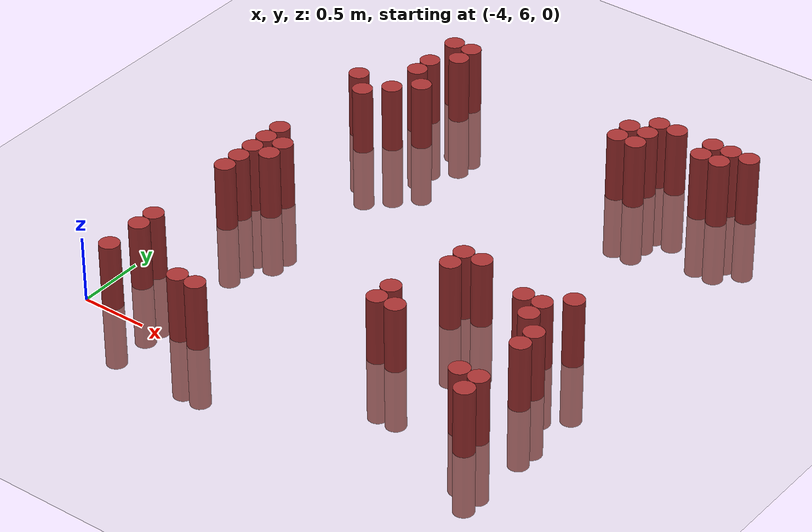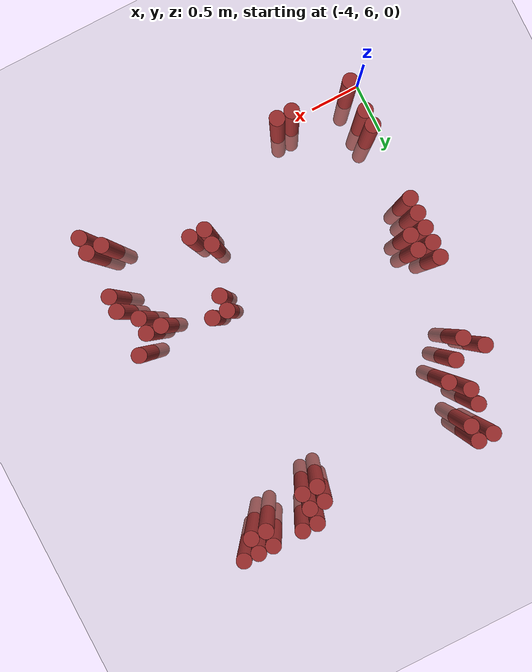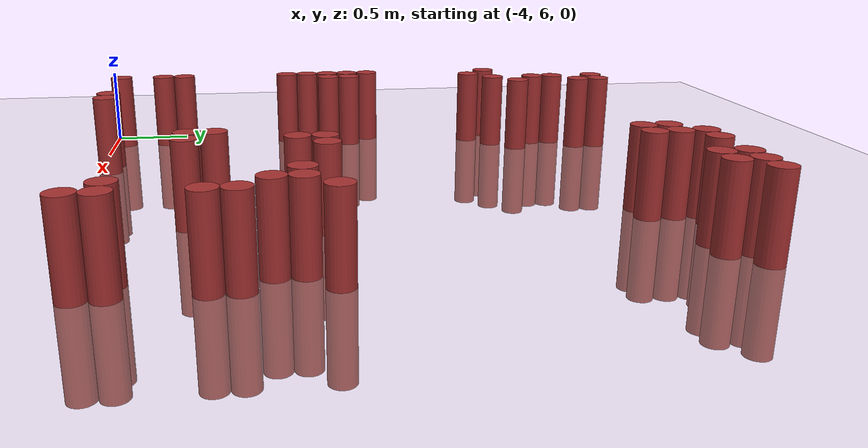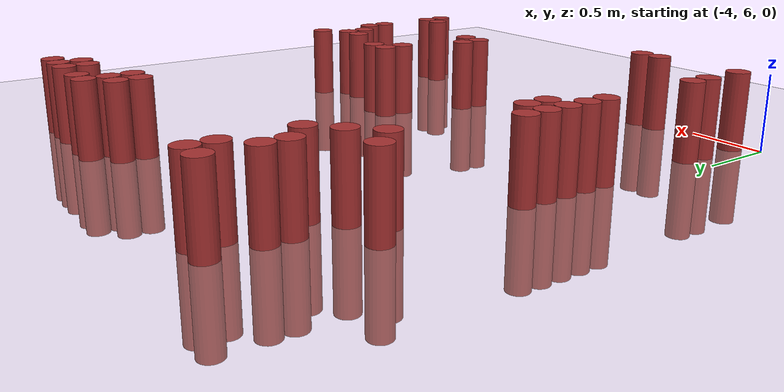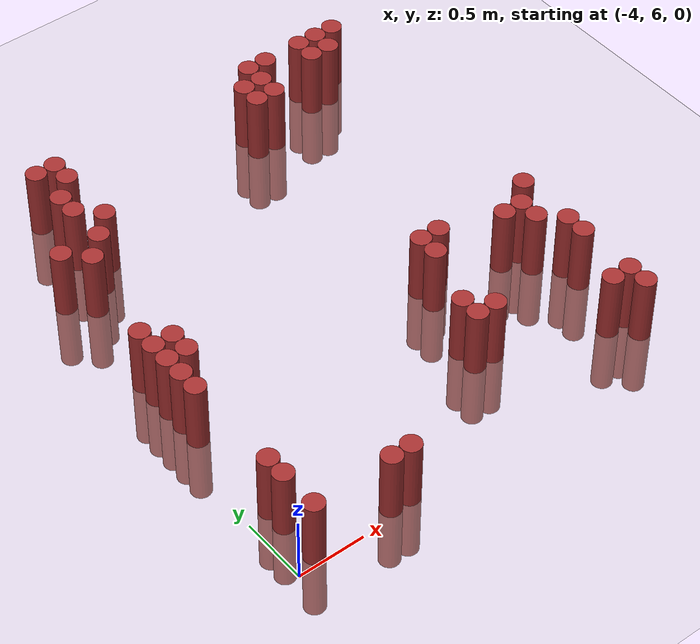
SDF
<sdf version="1.6">
 <world name="default">
  <model name="ground_plane">
   <static>1</static>
   <link name="link">
    <collision name="collision">
     <geometry><plane><normal>0 0 1</normal><size>100 100</size></plane></geometry>
     <surface><friction><ode><mu>100</mu><mu2>50</mu2></ode></friction></surface>
    </collision>
    <visual name="visual">
     <cast_shadows>0</cast_shadows>
     <geometry><plane><normal>0 0 1</normal><size>100 100</size></plane></geometry>
     <material>
      <script><uri>file://media/materials/scripts/gazebo.material</uri><name>Gazebo/Grey</name></script>
     </material>
    </visual>
   </link>
  </model>
  <model name="unit_cylinder_157">
   <static>1</static>
   <pose>-3.825000 6.075000 0.000000 0.000000 0.000000 0.000000</pose>
   <link name="link">
    <inertial>
     <mass>1</mass>
     <inertia><ixx>0.145833</ixx><ixy>0</ixy><ixz>0</ixz><iyy>0.145833</iyy><iyz>0</iyz><izz>0.125</izz></inertia>
    </inertial>
    <collision name="collision">
     <geometry><cylinder><radius>0.075000</radius><length>1</length></cylinder></geometry>
    </collision>
    <visual name="visual">
     <geometry><cylinder><radius>0.075000</radius><length>1</length></cylinder></geometry>
     <material>
      <ambient>0.648000 0.192000 0.192000 1</ambient>
      <diffuse>0.648000 0.192000 0.192000 1</diffuse>
     </material>
     <material>
      <script><name>Gazebo/Grey</name><uri>file://media/materials/scripts/gazebo.material</uri></script>
     </material>
    </visual>
   </link>
  </model>
  <model name="unit_cylinder_158">
   <static>1</static>
   <pose>-3.825000 6.375000 0.000000 0.000000 0.000000 0.000000</pose>
   <link name="link">
    <inertial>
     <mass>1</mass>
     <inertia><ixx>0.145833</ixx><ixy>0</ixy><ixz>0</ixz><iyy>0.145833</iyy><iyz>0</iyz><izz>0.125</izz></inertia>
    </inertial>
    <collision name="collision">
     <geometry><cylinder><radius>0.075000</radius><length>1</length></cylinder></geometry>
    </collision>
    <visual name="visual">
     <geometry><cylinder><radius>0.075000</radius><length>1</length></cylinder></geometry>
     <material>
      <ambient>0.648000 0.192000 0.192000 1</ambient>
      <diffuse>0.648000 0.192000 0.192000 1</diffuse>
     </material>
     <material>
      <script><name>Gazebo/Grey</name><uri>file://media/materials/scripts/gazebo.material</uri></script>
     </material>
    </visual>
   </link>
  </model>
  <model name="unit_cylinder_159">
   <static>1</static>
   <pose>-3.825000 6.525000 0.000000 0.000000 0.000000 0.000000</pose>
   <link name="link">
    <inertial>
     <mass>1</mass>
     <inertia><ixx>0.145833</ixx><ixy>0</ixy><ixz>0</ixz><iyy>0.145833</iyy><iyz>0</iyz><izz>0.125</izz></inertia>
    </inertial>
    <collision name="collision">
     <geometry><cylinder><radius>0.075000</radius><length>1</length></cylinder></geometry>
    </collision>
    <visual name="visual">
     <geometry><cylinder><radius>0.075000</radius><length>1</length></cylinder></geometry>
     <material>
      <ambient>0.648000 0.192000 0.192000 1</ambient>
      <diffuse>0.648000 0.192000 0.192000 1</diffuse>
     </material>
     <material>
      <script><name>Gazebo/Grey</name><uri>file://media/materials/scripts/gazebo.material</uri></script>
     </material>
    </visual>
   </link>
  </model>
  <model name="unit_cylinder_160">
   <static>1</static>
   <pose>-3.825000 7.275000 0.000000 0.000000 0.000000 0.000000</pose>
   <link name="link">
    <inertial>
     <mass>1</mass>
     <inertia><ixx>0.145833</ixx><ixy>0</ixy><ixz>0</ixz><iyy>0.145833</iyy><iyz>0</iyz><izz>0.125</izz></inertia>
    </inertial>
    <collision name="collision">
     <geometry><cylinder><radius>0.075000</radius><length>1</length></cylinder></geometry>
    </collision>
    <visual name="visual">
     <geometry><cylinder><radius>0.075000</radius><length>1</length></cylinder></geometry>
     <material>
      <ambient>0.648000 0.192000 0.192000 1</ambient>
      <diffuse>0.648000 0.192000 0.192000 1</diffuse>
     </material>
     <material>
      <script><name>Gazebo/Grey</name><uri>file://media/materials/scripts/gazebo.material</uri></script>
     </material>
    </visual>
   </link>
  </model>
  <model name="unit_cylinder_161">
   <static>1</static>
   <pose>-3.825000 7.425000 0.000000 0.000000 0.000000 0.000000</pose>
   <link name="link">
    <inertial>
     <mass>1</mass>
     <inertia><ixx>0.145833</ixx><ixy>0</ixy><ixz>0</ixz><iyy>0.145833</iyy><iyz>0</iyz><izz>0.125</izz></inertia>
    </inertial>
    <collision name="collision">
     <geometry><cylinder><radius>0.075000</radius><length>1</length></cylinder></geometry>
    </collision>
    <visual name="visual">
     <geometry><cylinder><radius>0.075000</radius><length>1</length></cylinder></geometry>
     <material>
      <ambient>0.648000 0.192000 0.192000 1</ambient>
      <diffuse>0.648000 0.192000 0.192000 1</diffuse>
     </material>
     <material>
      <script><name>Gazebo/Grey</name><uri>file://media/materials/scripts/gazebo.material</uri></script>
     </material>
    </visual>
   </link>
  </model>
  <model name="unit_cylinder_162">
   <static>1</static>
   <pose>-3.825000 7.575000 0.000000 0.000000 0.000000 0.000000</pose>
   <link name="link">
    <inertial>
     <mass>1</mass>
     <inertia><ixx>0.145833</ixx><ixy>0</ixy><ixz>0</ixz><iyy>0.145833</iyy><iyz>0</iyz><izz>0.125</izz></inertia>
    </inertial>
    <collision name="collision">
     <geometry><cylinder><radius>0.075000</radius><length>1</length></cylinder></geometry>
    </collision>
    <visual name="visual">
     <geometry><cylinder><radius>0.075000</radius><length>1</length></cylinder></geometry>
     <material>
      <ambient>0.648000 0.192000 0.192000 1</ambient>
      <diffuse>0.648000 0.192000 0.192000 1</diffuse>
     </material>
     <material>
      <script><name>Gazebo/Grey</name><uri>file://media/materials/scripts/gazebo.material</uri></script>
     </material>
    </visual>
   </link>
  </model>
  <model name="unit_cylinder_163">
   <static>1</static>
   <pose>-3.825000 7.725000 0.000000 0.000000 0.000000 0.000000</pose>
   <link name="link">
    <inertial>
     <mass>1</mass>
     <inertia><ixx>0.145833</ixx><ixy>0</ixy><ixz>0</ixz><iyy>0.145833</iyy><iyz>0</iyz><izz>0.125</izz></inertia>
    </inertial>
    <collision name="collision">
     <geometry><cylinder><radius>0.075000</radius><length>1</length></cylinder></geometry>
    </collision>
    <visual name="visual">
     <geometry><cylinder><radius>0.075000</radius><length>1</length></cylinder></geometry>
     <material>
      <ambient>0.648000 0.192000 0.192000 1</ambient>
      <diffuse>0.648000 0.192000 0.192000 1</diffuse>
     </material>
     <material>
      <script><name>Gazebo/Grey</name><uri>file://media/materials/scripts/gazebo.material</uri></script>
     </material>
    </visual>
   </link>
  </model>
  <model name="unit_cylinder_164">
   <static>1</static>
   <pose>-3.825000 7.875000 0.000000 0.000000 0.000000 0.000000</pose>
   <link name="link">
    <inertial>
     <mass>1</mass>
     <inertia><ixx>0.145833</ixx><ixy>0</ixy><ixz>0</ixz><iyy>0.145833</iyy><iyz>0</iyz><izz>0.125</izz></inertia>
    </inertial>
    <collision name="collision">
     <geometry><cylinder><radius>0.075000</radius><length>1</length></cylinder></geometry>
    </collision>
    <visual name="visual">
     <geometry><cylinder><radius>0.075000</radius><length>1</length></cylinder></geometry>
     <material>
      <ambient>0.648000 0.192000 0.192000 1</ambient>
      <diffuse>0.648000 0.192000 0.192000 1</diffuse>
     </material>
     <material>
      <script><name>Gazebo/Grey</name><uri>file://media/materials/scripts/gazebo.material</uri></script>
     </material>
    </visual>
   </link>
  </model>
  <model name="unit_cylinder_165">
   <static>1</static>
   <pose>-3.825000 8.775000 0.000000 0.000000 0.000000 0.000000</pose>
   <link name="link">
    <inertial>
     <mass>1</mass>
     <inertia><ixx>0.145833</ixx><ixy>0</ixy><ixz>0</ixz><iyy>0.145833</iyy><iyz>0</iyz><izz>0.125</izz></inertia>
    </inertial>
    <collision name="collision">
     <geometry><cylinder><radius>0.075000</radius><length>1</length></cylinder></geometry>
    </collision>
    <visual name="visual">
     <geometry><cylinder><radius>0.075000</radius><length>1</length></cylinder></geometry>
     <material>
      <ambient>0.648000 0.192000 0.192000 1</ambient>
      <diffuse>0.648000 0.192000 0.192000 1</diffuse>
     </material>
     <material>
      <script><name>Gazebo/Grey</name><uri>file://media/materials/scripts/gazebo.material</uri></script>
     </material>
    </visual>
   </link>
  </model>
  <model name="unit_cylinder_170">
   <static>1</static>
   <pose>-3.675000 7.575000 0.000000 0.000000 0.000000 0.000000</pose>
   <link name="link">
    <inertial>
     <mass>1</mass>
     <inertia><ixx>0.145833</ixx><ixy>0</ixy><ixz>0</ixz><iyy>0.145833</iyy><iyz>0</iyz><izz>0.125</izz></inertia>
    </inertial>
    <collision name="collision">
     <geometry><cylinder><radius>0.075000</radius><length>1</length></cylinder></geometry>
    </collision>
    <visual name="visual">
     <geometry><cylinder><radius>0.075000</radius><length>1</length></cylinder></geometry>
     <material>
      <ambient>0.648000 0.192000 0.192000 1</ambient>
      <diffuse>0.648000 0.192000 0.192000 1</diffuse>
     </material>
     <material>
      <script><name>Gazebo/Grey</name><uri>file://media/materials/scripts/gazebo.material</uri></script>
     </material>
    </visual>
   </link>
  </model>
  <model name="unit_cylinder_171">
   <static>1</static>
   <pose>-3.675000 7.725000 0.000000 0.000000 0.000000 0.000000</pose>
   <link name="link">
    <inertial>
     <mass>1</mass>
     <inertia><ixx>0.145833</ixx><ixy>0</ixy><ixz>0</ixz><iyy>0.145833</iyy><iyz>0</iyz><izz>0.125</izz></inertia>
    </inertial>
    <collision name="collision">
     <geometry><cylinder><radius>0.075000</radius><length>1</length></cylinder></geometry>
    </collision>
    <visual name="visual">
     <geometry><cylinder><radius>0.075000</radius><length>1</length></cylinder></geometry>
     <material>
      <ambient>0.648000 0.192000 0.192000 1</ambient>
      <diffuse>0.648000 0.192000 0.192000 1</diffuse>
     </material>
     <material>
      <script><name>Gazebo/Grey</name><uri>file://media/materials/scripts/gazebo.material</uri></script>
     </material>
    </visual>
   </link>
  </model>
  <model name="unit_cylinder_172">
   <static>1</static>
   <pose>-3.675000 8.625000 0.000000 0.000000 0.000000 0.000000</pose>
   <link name="link">
    <inertial>
     <mass>1</mass>
     <inertia><ixx>0.145833</ixx><ixy>0</ixy><ixz>0</ixz><iyy>0.145833</iyy><iyz>0</iyz><izz>0.125</izz></inertia>
    </inertial>
    <collision name="collision">
     <geometry><cylinder><radius>0.075000</radius><length>1</length></cylinder></geometry>
    </collision>
    <visual name="visual">
     <geometry><cylinder><radius>0.075000</radius><length>1</length></cylinder></geometry>
     <material>
      <ambient>0.648000 0.192000 0.192000 1</ambient>
      <diffuse>0.648000 0.192000 0.192000 1</diffuse>
     </material>
     <material>
      <script><name>Gazebo/Grey</name><uri>file://media/materials/scripts/gazebo.material</uri></script>
     </material>
    </visual>
   </link>
  </model>
  <model name="unit_cylinder_177">
   <static>1</static>
   <pose>-3.525000 8.775000 0.000000 0.000000 0.000000 0.000000</pose>
   <link name="link">
    <inertial>
     <mass>1</mass>
     <inertia><ixx>0.145833</ixx><ixy>0</ixy><ixz>0</ixz><iyy>0.145833</iyy><iyz>0</iyz><izz>0.125</izz></inertia>
    </inertial>
    <collision name="collision">
     <geometry><cylinder><radius>0.075000</radius><length>1</length></cylinder></geometry>
    </collision>
    <visual name="visual">
     <geometry><cylinder><radius>0.075000</radius><length>1</length></cylinder></geometry>
     <material>
      <ambient>0.648000 0.192000 0.192000 1</ambient>
      <diffuse>0.648000 0.192000 0.192000 1</diffuse>
     </material>
     <material>
      <script><name>Gazebo/Grey</name><uri>file://media/materials/scripts/gazebo.material</uri></script>
     </material>
    </visual>
   </link>
  </model>
  <model name="unit_cylinder_178">
   <static>1</static>
   <pose>-3.525000 9.075000 0.000000 0.000000 0.000000 0.000000</pose>
   <link name="link">
    <inertial>
     <mass>1</mass>
     <inertia><ixx>0.145833</ixx><ixy>0</ixy><ixz>0</ixz><iyy>0.145833</iyy><iyz>0</iyz><izz>0.125</izz></inertia>
    </inertial>
    <collision name="collision">
     <geometry><cylinder><radius>0.075000</radius><length>1</length></cylinder></geometry>
    </collision>
    <visual name="visual">
     <geometry><cylinder><radius>0.075000</radius><length>1</length></cylinder></geometry>
     <material>
      <ambient>0.648000 0.192000 0.192000 1</ambient>
      <diffuse>0.648000 0.192000 0.192000 1</diffuse>
     </material>
     <material>
      <script><name>Gazebo/Grey</name><uri>file://media/materials/scripts/gazebo.material</uri></script>
     </material>
    </visual>
   </link>
  </model>
  <model name="unit_cylinder_179">
   <static>1</static>
   <pose>-3.525000 9.225000 0.000000 0.000000 0.000000 0.000000</pose>
   <link name="link">
    <inertial>
     <mass>1</mass>
     <inertia><ixx>0.145833</ixx><ixy>0</ixy><ixz>0</ixz><iyy>0.145833</iyy><iyz>0</iyz><izz>0.125</izz></inertia>
    </inertial>
    <collision name="collision">
     <geometry><cylinder><radius>0.075000</radius><length>1</length></cylinder></geometry>
    </collision>
    <visual name="visual">
     <geometry><cylinder><radius>0.075000</radius><length>1</length></cylinder></geometry>
     <material>
      <ambient>0.648000 0.192000 0.192000 1</ambient>
      <diffuse>0.648000 0.192000 0.192000 1</diffuse>
     </material>
     <material>
      <script><name>Gazebo/Grey</name><uri>file://media/materials/scripts/gazebo.material</uri></script>
     </material>
    </visual>
   </link>
  </model>
  <model name="unit_cylinder_180">
   <static>1</static>
   <pose>-3.525000 9.525000 0.000000 0.000000 0.000000 0.000000</pose>
   <link name="link">
    <inertial>
     <mass>1</mass>
     <inertia><ixx>0.145833</ixx><ixy>0</ixy><ixz>0</ixz><iyy>0.145833</iyy><iyz>0</iyz><izz>0.125</izz></inertia>
    </inertial>
    <collision name="collision">
     <geometry><cylinder><radius>0.075000</radius><length>1</length></cylinder></geometry>
    </collision>
    <visual name="visual">
     <geometry><cylinder><radius>0.075000</radius><length>1</length></cylinder></geometry>
     <material>
      <ambient>0.648000 0.192000 0.192000 1</ambient>
      <diffuse>0.648000 0.192000 0.192000 1</diffuse>
     </material>
     <material>
      <script><name>Gazebo/Grey</name><uri>file://media/materials/scripts/gazebo.material</uri></script>
     </material>
    </visual>
   </link>
  </model>
  <model name="unit_cylinder_186">
   <static>1</static>
   <pose>-3.375000 8.925000 0.000000 0.000000 0.000000 0.000000</pose>
   <link name="link">
    <inertial>
     <mass>1</mass>
     <inertia><ixx>0.145833</ixx><ixy>0</ixy><ixz>0</ixz><iyy>0.145833</iyy><iyz>0</iyz><izz>0.125</izz></inertia>
    </inertial>
    <collision name="collision">
     <geometry><cylinder><radius>0.075000</radius><length>1</length></cylinder></geometry>
    </collision>
    <visual name="visual">
     <geometry><cylinder><radius>0.075000</radius><length>1</length></cylinder></geometry>
     <material>
      <ambient>0.648000 0.192000 0.192000 1</ambient>
      <diffuse>0.648000 0.192000 0.192000 1</diffuse>
     </material>
     <material>
      <script><name>Gazebo/Grey</name><uri>file://media/materials/scripts/gazebo.material</uri></script>
     </material>
    </visual>
   </link>
  </model>
  <model name="unit_cylinder_187">
   <static>1</static>
   <pose>-3.375000 9.375000 0.000000 0.000000 0.000000 0.000000</pose>
   <link name="link">
    <inertial>
     <mass>1</mass>
     <inertia><ixx>0.145833</ixx><ixy>0</ixy><ixz>0</ixz><iyy>0.145833</iyy><iyz>0</iyz><izz>0.125</izz></inertia>
    </inertial>
    <collision name="collision">
     <geometry><cylinder><radius>0.075000</radius><length>1</length></cylinder></geometry>
    </collision>
    <visual name="visual">
     <geometry><cylinder><radius>0.075000</radius><length>1</length></cylinder></geometry>
     <material>
      <ambient>0.648000 0.192000 0.192000 1</ambient>
      <diffuse>0.648000 0.192000 0.192000 1</diffuse>
     </material>
     <material>
      <script><name>Gazebo/Grey</name><uri>file://media/materials/scripts/gazebo.material</uri></script>
     </material>
    </visual>
   </link>
  </model>
  <model name="unit_cylinder_188">
   <static>1</static>
   <pose>-3.375000 9.525000 0.000000 0.000000 0.000000 0.000000</pose>
   <link name="link">
    <inertial>
     <mass>1</mass>
     <inertia><ixx>0.145833</ixx><ixy>0</ixy><ixz>0</ixz><iyy>0.145833</iyy><iyz>0</iyz><izz>0.125</izz></inertia>
    </inertial>
    <collision name="collision">
     <geometry><cylinder><radius>0.075000</radius><length>1</length></cylinder></geometry>
    </collision>
    <visual name="visual">
     <geometry><cylinder><radius>0.075000</radius><length>1</length></cylinder></geometry>
     <material>
      <ambient>0.648000 0.192000 0.192000 1</ambient>
      <diffuse>0.648000 0.192000 0.192000 1</diffuse>
     </material>
     <material>
      <script><name>Gazebo/Grey</name><uri>file://media/materials/scripts/gazebo.material</uri></script>
     </material>
    </visual>
   </link>
  </model>
  <model name="unit_cylinder_191">
   <static>1</static>
   <pose>-3.225000 6.075000 0.000000 0.000000 0.000000 0.000000</pose>
   <link name="link">
    <inertial>
     <mass>1</mass>
     <inertia><ixx>0.145833</ixx><ixy>0</ixy><ixz>0</ixz><iyy>0.145833</iyy><iyz>0</iyz><izz>0.125</izz></inertia>
    </inertial>
    <collision name="collision">
     <geometry><cylinder><radius>0.075000</radius><length>1</length></cylinder></geometry>
    </collision>
    <visual name="visual">
     <geometry><cylinder><radius>0.075000</radius><length>1</length></cylinder></geometry>
     <material>
      <ambient>0.648000 0.192000 0.192000 1</ambient>
      <diffuse>0.648000 0.192000 0.192000 1</diffuse>
     </material>
     <material>
      <script><name>Gazebo/Grey</name><uri>file://media/materials/scripts/gazebo.material</uri></script>
     </material>
    </visual>
   </link>
  </model>
  <model name="unit_cylinder_192">
   <static>1</static>
   <pose>-3.075000 6.075000 0.000000 0.000000 0.000000 0.000000</pose>
   <link name="link">
    <inertial>
     <mass>1</mass>
     <inertia><ixx>0.145833</ixx><ixy>0</ixy><ixz>0</ixz><iyy>0.145833</iyy><iyz>0</iyz><izz>0.125</izz></inertia>
    </inertial>
    <collision name="collision">
     <geometry><cylinder><radius>0.075000</radius><length>1</length></cylinder></geometry>
    </collision>
    <visual name="visual">
     <geometry><cylinder><radius>0.075000</radius><length>1</length></cylinder></geometry>
     <material>
      <ambient>0.648000 0.192000 0.192000 1</ambient>
      <diffuse>0.648000 0.192000 0.192000 1</diffuse>
     </material>
     <material>
      <script><name>Gazebo/Grey</name><uri>file://media/materials/scripts/gazebo.material</uri></script>
     </material>
    </visual>
   </link>
  </model>
  <model name="unit_cylinder_196">
   <static>1</static>
   <pose>-2.025000 6.675000 0.000000 0.000000 0.000000 0.000000</pose>
   <link name="link">
    <inertial>
     <mass>1</mass>
     <inertia><ixx>0.145833</ixx><ixy>0</ixy><ixz>0</ixz><iyy>0.145833</iyy><iyz>0</iyz><izz>0.125</izz></inertia>
    </inertial>
    <collision name="collision">
     <geometry><cylinder><radius>0.075000</radius><length>1</length></cylinder></geometry>
    </collision>
    <visual name="visual">
     <geometry><cylinder><radius>0.075000</radius><length>1</length></cylinder></geometry>
     <material>
      <ambient>0.648000 0.192000 0.192000 1</ambient>
      <diffuse>0.648000 0.192000 0.192000 1</diffuse>
     </material>
     <material>
      <script><name>Gazebo/Grey</name><uri>file://media/materials/scripts/gazebo.material</uri></script>
     </material>
    </visual>
   </link>
  </model>
  <model name="unit_cylinder_197">
   <static>1</static>
   <pose>-2.025000 6.825000 0.000000 0.000000 0.000000 0.000000</pose>
   <link name="link">
    <inertial>
     <mass>1</mass>
     <inertia><ixx>0.145833</ixx><ixy>0</ixy><ixz>0</ixz><iyy>0.145833</iyy><iyz>0</iyz><izz>0.125</izz></inertia>
    </inertial>
    <collision name="collision">
     <geometry><cylinder><radius>0.075000</radius><length>1</length></cylinder></geometry>
    </collision>
    <visual name="visual">
     <geometry><cylinder><radius>0.075000</radius><length>1</length></cylinder></geometry>
     <material>
      <ambient>0.648000 0.192000 0.192000 1</ambient>
      <diffuse>0.648000 0.192000 0.192000 1</diffuse>
     </material>
     <material>
      <script><name>Gazebo/Grey</name><uri>file://media/materials/scripts/gazebo.material</uri></script>
     </material>
    </visual>
   </link>
  </model>
  <model name="unit_cylinder_198">
   <static>1</static>
   <pose>-1.875000 6.675000 0.000000 0.000000 0.000000 0.000000</pose>
   <link name="link">
    <inertial>
     <mass>1</mass>
     <inertia><ixx>0.145833</ixx><ixy>0</ixy><ixz>0</ixz><iyy>0.145833</iyy><iyz>0</iyz><izz>0.125</izz></inertia>
    </inertial>
    <collision name="collision">
     <geometry><cylinder><radius>0.075000</radius><length>1</length></cylinder></geometry>
    </collision>
    <visual name="visual">
     <geometry><cylinder><radius>0.075000</radius><length>1</length></cylinder></geometry>
     <material>
      <ambient>0.648000 0.192000 0.192000 1</ambient>
      <diffuse>0.648000 0.192000 0.192000 1</diffuse>
     </material>
     <material>
      <script><name>Gazebo/Grey</name><uri>file://media/materials/scripts/gazebo.material</uri></script>
     </material>
    </visual>
   </link>
  </model>
  <model name="unit_cylinder_199">
   <static>1</static>
   <pose>-1.875000 7.275000 0.000000 0.000000 0.000000 0.000000</pose>
   <link name="link">
    <inertial>
     <mass>1</mass>
     <inertia><ixx>0.145833</ixx><ixy>0</ixy><ixz>0</ixz><iyy>0.145833</iyy><iyz>0</iyz><izz>0.125</izz></inertia>
    </inertial>
    <collision name="collision">
     <geometry><cylinder><radius>0.075000</radius><length>1</length></cylinder></geometry>
    </collision>
    <visual name="visual">
     <geometry><cylinder><radius>0.075000</radius><length>1</length></cylinder></geometry>
     <material>
      <ambient>0.648000 0.192000 0.192000 1</ambient>
      <diffuse>0.648000 0.192000 0.192000 1</diffuse>
     </material>
     <material>
      <script><name>Gazebo/Grey</name><uri>file://media/materials/scripts/gazebo.material</uri></script>
     </material>
    </visual>
   </link>
  </model>
  <model name="unit_cylinder_200">
   <static>1</static>
   <pose>-1.875000 7.425000 0.000000 0.000000 0.000000 0.000000</pose>
   <link name="link">
    <inertial>
     <mass>1</mass>
     <inertia><ixx>0.145833</ixx><ixy>0</ixy><ixz>0</ixz><iyy>0.145833</iyy><iyz>0</iyz><izz>0.125</izz></inertia>
    </inertial>
    <collision name="collision">
     <geometry><cylinder><radius>0.075000</radius><length>1</length></cylinder></geometry>
    </collision>
    <visual name="visual">
     <geometry><cylinder><radius>0.075000</radius><length>1</length></cylinder></geometry>
     <material>
      <ambient>0.648000 0.192000 0.192000 1</ambient>
      <diffuse>0.648000 0.192000 0.192000 1</diffuse>
     </material>
     <material>
      <script><name>Gazebo/Grey</name><uri>file://media/materials/scripts/gazebo.material</uri></script>
     </material>
    </visual>
   </link>
  </model>
  <model name="unit_cylinder_201">
   <static>1</static>
   <pose>-1.875000 9.225000 0.000000 0.000000 0.000000 0.000000</pose>
   <link name="link">
    <inertial>
     <mass>1</mass>
     <inertia><ixx>0.145833</ixx><ixy>0</ixy><ixz>0</ixz><iyy>0.145833</iyy><iyz>0</iyz><izz>0.125</izz></inertia>
    </inertial>
    <collision name="collision">
     <geometry><cylinder><radius>0.075000</radius><length>1</length></cylinder></geometry>
    </collision>
    <visual name="visual">
     <geometry><cylinder><radius>0.075000</radius><length>1</length></cylinder></geometry>
     <material>
      <ambient>0.648000 0.192000 0.192000 1</ambient>
      <diffuse>0.648000 0.192000 0.192000 1</diffuse>
     </material>
     <material>
      <script><name>Gazebo/Grey</name><uri>file://media/materials/scripts/gazebo.material</uri></script>
     </material>
    </visual>
   </link>
  </model>
  <model name="unit_cylinder_202">
   <static>1</static>
   <pose>-1.875000 9.375000 0.000000 0.000000 0.000000 0.000000</pose>
   <link name="link">
    <inertial>
     <mass>1</mass>
     <inertia><ixx>0.145833</ixx><ixy>0</ixy><ixz>0</ixz><iyy>0.145833</iyy><iyz>0</iyz><izz>0.125</izz></inertia>
    </inertial>
    <collision name="collision">
     <geometry><cylinder><radius>0.075000</radius><length>1</length></cylinder></geometry>
    </collision>
    <visual name="visual">
     <geometry><cylinder><radius>0.075000</radius><length>1</length></cylinder></geometry>
     <material>
      <ambient>0.648000 0.192000 0.192000 1</ambient>
      <diffuse>0.648000 0.192000 0.192000 1</diffuse>
     </material>
     <material>
      <script><name>Gazebo/Grey</name><uri>file://media/materials/scripts/gazebo.material</uri></script>
     </material>
    </visual>
   </link>
  </model>
  <model name="unit_cylinder_204">
   <static>1</static>
   <pose>-1.725000 7.425000 0.000000 0.000000 0.000000 0.000000</pose>
   <link name="link">
    <inertial>
     <mass>1</mass>
     <inertia><ixx>0.145833</ixx><ixy>0</ixy><ixz>0</ixz><iyy>0.145833</iyy><iyz>0</iyz><izz>0.125</izz></inertia>
    </inertial>
    <collision name="collision">
     <geometry><cylinder><radius>0.075000</radius><length>1</length></cylinder></geometry>
    </collision>
    <visual name="visual">
     <geometry><cylinder><radius>0.075000</radius><length>1</length></cylinder></geometry>
     <material>
      <ambient>0.648000 0.192000 0.192000 1</ambient>
      <diffuse>0.648000 0.192000 0.192000 1</diffuse>
     </material>
     <material>
      <script><name>Gazebo/Grey</name><uri>file://media/materials/scripts/gazebo.material</uri></script>
     </material>
    </visual>
   </link>
  </model>
  <model name="unit_cylinder_205">
   <static>1</static>
   <pose>-1.725000 9.225000 0.000000 0.000000 0.000000 0.000000</pose>
   <link name="link">
    <inertial>
     <mass>1</mass>
     <inertia><ixx>0.145833</ixx><ixy>0</ixy><ixz>0</ixz><iyy>0.145833</iyy><iyz>0</iyz><izz>0.125</izz></inertia>
    </inertial>
    <collision name="collision">
     <geometry><cylinder><radius>0.075000</radius><length>1</length></cylinder></geometry>
    </collision>
    <visual name="visual">
     <geometry><cylinder><radius>0.075000</radius><length>1</length></cylinder></geometry>
     <material>
      <ambient>0.648000 0.192000 0.192000 1</ambient>
      <diffuse>0.648000 0.192000 0.192000 1</diffuse>
     </material>
     <material>
      <script><name>Gazebo/Grey</name><uri>file://media/materials/scripts/gazebo.material</uri></script>
     </material>
    </visual>
   </link>
  </model>
  <model name="unit_cylinder_206">
   <static>1</static>
   <pose>-1.725000 9.375000 0.000000 0.000000 0.000000 0.000000</pose>
   <link name="link">
    <inertial>
     <mass>1</mass>
     <inertia><ixx>0.145833</ixx><ixy>0</ixy><ixz>0</ixz><iyy>0.145833</iyy><iyz>0</iyz><izz>0.125</izz></inertia>
    </inertial>
    <collision name="collision">
     <geometry><cylinder><radius>0.075000</radius><length>1</length></cylinder></geometry>
    </collision>
    <visual name="visual">
     <geometry><cylinder><radius>0.075000</radius><length>1</length></cylinder></geometry>
     <material>
      <ambient>0.648000 0.192000 0.192000 1</ambient>
      <diffuse>0.648000 0.192000 0.192000 1</diffuse>
     </material>
     <material>
      <script><name>Gazebo/Grey</name><uri>file://media/materials/scripts/gazebo.material</uri></script>
     </material>
    </visual>
   </link>
  </model>
  <model name="unit_cylinder_207">
   <static>1</static>
   <pose>-1.725000 9.525000 0.000000 0.000000 0.000000 0.000000</pose>
   <link name="link">
    <inertial>
     <mass>1</mass>
     <inertia><ixx>0.145833</ixx><ixy>0</ixy><ixz>0</ixz><iyy>0.145833</iyy><iyz>0</iyz><izz>0.125</izz></inertia>
    </inertial>
    <collision name="collision">
     <geometry><cylinder><radius>0.075000</radius><length>1</length></cylinder></geometry>
    </collision>
    <visual name="visual">
     <geometry><cylinder><radius>0.075000</radius><length>1</length></cylinder></geometry>
     <material>
      <ambient>0.648000 0.192000 0.192000 1</ambient>
      <diffuse>0.648000 0.192000 0.192000 1</diffuse>
     </material>
     <material>
      <script><name>Gazebo/Grey</name><uri>file://media/materials/scripts/gazebo.material</uri></script>
     </material>
    </visual>
   </link>
  </model>
  <model name="unit_cylinder_211">
   <static>1</static>
   <pose>-1.575000 9.525000 0.000000 0.000000 0.000000 0.000000</pose>
   <link name="link">
    <inertial>
     <mass>1</mass>
     <inertia><ixx>0.145833</ixx><ixy>0</ixy><ixz>0</ixz><iyy>0.145833</iyy><iyz>0</iyz><izz>0.125</izz></inertia>
    </inertial>
    <collision name="collision">
     <geometry><cylinder><radius>0.075000</radius><length>1</length></cylinder></geometry>
    </collision>
    <visual name="visual">
     <geometry><cylinder><radius>0.075000</radius><length>1</length></cylinder></geometry>
     <material>
      <ambient>0.648000 0.192000 0.192000 1</ambient>
      <diffuse>0.648000 0.192000 0.192000 1</diffuse>
     </material>
     <material>
      <script><name>Gazebo/Grey</name><uri>file://media/materials/scripts/gazebo.material</uri></script>
     </material>
    </visual>
   </link>
  </model>
  <model name="unit_cylinder_213">
   <static>1</static>
   <pose>-1.275000 7.275000 0.000000 0.000000 0.000000 0.000000</pose>
   <link name="link">
    <inertial>
     <mass>1</mass>
     <inertia><ixx>0.145833</ixx><ixy>0</ixy><ixz>0</ixz><iyy>0.145833</iyy><iyz>0</iyz><izz>0.125</izz></inertia>
    </inertial>
    <collision name="collision">
     <geometry><cylinder><radius>0.075000</radius><length>1</length></cylinder></geometry>
    </collision>
    <visual name="visual">
     <geometry><cylinder><radius>0.075000</radius><length>1</length></cylinder></geometry>
     <material>
      <ambient>0.648000 0.192000 0.192000 1</ambient>
      <diffuse>0.648000 0.192000 0.192000 1</diffuse>
     </material>
     <material>
      <script><name>Gazebo/Grey</name><uri>file://media/materials/scripts/gazebo.material</uri></script>
     </material>
    </visual>
   </link>
  </model>
  <model name="unit_cylinder_214">
   <static>1</static>
   <pose>-1.275000 9.375000 0.000000 0.000000 0.000000 0.000000</pose>
   <link name="link">
    <inertial>
     <mass>1</mass>
     <inertia><ixx>0.145833</ixx><ixy>0</ixy><ixz>0</ixz><iyy>0.145833</iyy><iyz>0</iyz><izz>0.125</izz></inertia>
    </inertial>
    <collision name="collision">
     <geometry><cylinder><radius>0.075000</radius><length>1</length></cylinder></geometry>
    </collision>
    <visual name="visual">
     <geometry><cylinder><radius>0.075000</radius><length>1</length></cylinder></geometry>
     <material>
      <ambient>0.648000 0.192000 0.192000 1</ambient>
      <diffuse>0.648000 0.192000 0.192000 1</diffuse>
     </material>
     <material>
      <script><name>Gazebo/Grey</name><uri>file://media/materials/scripts/gazebo.material</uri></script>
     </material>
    </visual>
   </link>
  </model>
  <model name="unit_cylinder_215">
   <static>1</static>
   <pose>-1.275000 9.525000 0.000000 0.000000 0.000000 0.000000</pose>
   <link name="link">
    <inertial>
     <mass>1</mass>
     <inertia><ixx>0.145833</ixx><ixy>0</ixy><ixz>0</ixz><iyy>0.145833</iyy><iyz>0</iyz><izz>0.125</izz></inertia>
    </inertial>
    <collision name="collision">
     <geometry><cylinder><radius>0.075000</radius><length>1</length></cylinder></geometry>
    </collision>
    <visual name="visual">
     <geometry><cylinder><radius>0.075000</radius><length>1</length></cylinder></geometry>
     <material>
      <ambient>0.648000 0.192000 0.192000 1</ambient>
      <diffuse>0.648000 0.192000 0.192000 1</diffuse>
     </material>
     <material>
      <script><name>Gazebo/Grey</name><uri>file://media/materials/scripts/gazebo.material</uri></script>
     </material>
    </visual>
   </link>
  </model>
  <model name="unit_cylinder_216">
   <static>1</static>
   <pose>-1.125000 6.375000 0.000000 0.000000 0.000000 0.000000</pose>
   <link name="link">
    <inertial>
     <mass>1</mass>
     <inertia><ixx>0.145833</ixx><ixy>0</ixy><ixz>0</ixz><iyy>0.145833</iyy><iyz>0</iyz><izz>0.125</izz></inertia>
    </inertial>
    <collision name="collision">
     <geometry><cylinder><radius>0.075000</radius><length>1</length></cylinder></geometry>
    </collision>
    <visual name="visual">
     <geometry><cylinder><radius>0.075000</radius><length>1</length></cylinder></geometry>
     <material>
      <ambient>0.648000 0.192000 0.192000 1</ambient>
      <diffuse>0.648000 0.192000 0.192000 1</diffuse>
     </material>
     <material>
      <script><name>Gazebo/Grey</name><uri>file://media/materials/scripts/gazebo.material</uri></script>
     </material>
    </visual>
   </link>
  </model>
  <model name="unit_cylinder_217">
   <static>1</static>
   <pose>-1.125000 7.125000 0.000000 0.000000 0.000000 0.000000</pose>
   <link name="link">
    <inertial>
     <mass>1</mass>
     <inertia><ixx>0.145833</ixx><ixy>0</ixy><ixz>0</ixz><iyy>0.145833</iyy><iyz>0</iyz><izz>0.125</izz></inertia>
    </inertial>
    <collision name="collision">
     <geometry><cylinder><radius>0.075000</radius><length>1</length></cylinder></geometry>
    </collision>
    <visual name="visual">
     <geometry><cylinder><radius>0.075000</radius><length>1</length></cylinder></geometry>
     <material>
      <ambient>0.648000 0.192000 0.192000 1</ambient>
      <diffuse>0.648000 0.192000 0.192000 1</diffuse>
     </material>
     <material>
      <script><name>Gazebo/Grey</name><uri>file://media/materials/scripts/gazebo.material</uri></script>
     </material>
    </visual>
   </link>
  </model>
  <model name="unit_cylinder_218">
   <static>1</static>
   <pose>-1.125000 7.275000 0.000000 0.000000 0.000000 0.000000</pose>
   <link name="link">
    <inertial>
     <mass>1</mass>
     <inertia><ixx>0.145833</ixx><ixy>0</ixy><ixz>0</ixz><iyy>0.145833</iyy><iyz>0</iyz><izz>0.125</izz></inertia>
    </inertial>
    <collision name="collision">
     <geometry><cylinder><radius>0.075000</radius><length>1</length></cylinder></geometry>
    </collision>
    <visual name="visual">
     <geometry><cylinder><radius>0.075000</radius><length>1</length></cylinder></geometry>
     <material>
      <ambient>0.648000 0.192000 0.192000 1</ambient>
      <diffuse>0.648000 0.192000 0.192000 1</diffuse>
     </material>
     <material>
      <script><name>Gazebo/Grey</name><uri>file://media/materials/scripts/gazebo.material</uri></script>
     </material>
    </visual>
   </link>
  </model>
  <model name="unit_cylinder_219">
   <static>1</static>
   <pose>-1.125000 9.375000 0.000000 0.000000 0.000000 0.000000</pose>
   <link name="link">
    <inertial>
     <mass>1</mass>
     <inertia><ixx>0.145833</ixx><ixy>0</ixy><ixz>0</ixz><iyy>0.145833</iyy><iyz>0</iyz><izz>0.125</izz></inertia>
    </inertial>
    <collision name="collision">
     <geometry><cylinder><radius>0.075000</radius><length>1</length></cylinder></geometry>
    </collision>
    <visual name="visual">
     <geometry><cylinder><radius>0.075000</radius><length>1</length></cylinder></geometry>
     <material>
      <ambient>0.648000 0.192000 0.192000 1</ambient>
      <diffuse>0.648000 0.192000 0.192000 1</diffuse>
     </material>
     <material>
      <script><name>Gazebo/Grey</name><uri>file://media/materials/scripts/gazebo.material</uri></script>
     </material>
    </visual>
   </link>
  </model>
  <model name="unit_cylinder_220">
   <static>1</static>
   <pose>-1.125000 9.525000 0.000000 0.000000 0.000000 0.000000</pose>
   <link name="link">
    <inertial>
     <mass>1</mass>
     <inertia><ixx>0.145833</ixx><ixy>0</ixy><ixz>0</ixz><iyy>0.145833</iyy><iyz>0</iyz><izz>0.125</izz></inertia>
    </inertial>
    <collision name="collision">
     <geometry><cylinder><radius>0.075000</radius><length>1</length></cylinder></geometry>
    </collision>
    <visual name="visual">
     <geometry><cylinder><radius>0.075000</radius><length>1</length></cylinder></geometry>
     <material>
      <ambient>0.648000 0.192000 0.192000 1</ambient>
      <diffuse>0.648000 0.192000 0.192000 1</diffuse>
     </material>
     <material>
      <script><name>Gazebo/Grey</name><uri>file://media/materials/scripts/gazebo.material</uri></script>
     </material>
    </visual>
   </link>
  </model>
  <model name="unit_cylinder_221">
   <static>1</static>
   <pose>-0.975000 6.225000 0.000000 0.000000 0.000000 0.000000</pose>
   <link name="link">
    <inertial>
     <mass>1</mass>
     <inertia><ixx>0.145833</ixx><ixy>0</ixy><ixz>0</ixz><iyy>0.145833</iyy><iyz>0</iyz><izz>0.125</izz></inertia>
    </inertial>
    <collision name="collision">
     <geometry><cylinder><radius>0.075000</radius><length>1</length></cylinder></geometry>
    </collision>
    <visual name="visual">
     <geometry><cylinder><radius>0.075000</radius><length>1</length></cylinder></geometry>
     <material>
      <ambient>0.648000 0.192000 0.192000 1</ambient>
      <diffuse>0.648000 0.192000 0.192000 1</diffuse>
     </material>
     <material>
      <script><name>Gazebo/Grey</name><uri>file://media/materials/scripts/gazebo.material</uri></script>
     </material>
    </visual>
   </link>
  </model>
  <model name="unit_cylinder_222">
   <static>1</static>
   <pose>-0.975000 6.375000 0.000000 0.000000 0.000000 0.000000</pose>
   <link name="link">
    <inertial>
     <mass>1</mass>
     <inertia><ixx>0.145833</ixx><ixy>0</ixy><ixz>0</ixz><iyy>0.145833</iyy><iyz>0</iyz><izz>0.125</izz></inertia>
    </inertial>
    <collision name="collision">
     <geometry><cylinder><radius>0.075000</radius><length>1</length></cylinder></geometry>
    </collision>
    <visual name="visual">
     <geometry><cylinder><radius>0.075000</radius><length>1</length></cylinder></geometry>
     <material>
      <ambient>0.648000 0.192000 0.192000 1</ambient>
      <diffuse>0.648000 0.192000 0.192000 1</diffuse>
     </material>
     <material>
      <script><name>Gazebo/Grey</name><uri>file://media/materials/scripts/gazebo.material</uri></script>
     </material>
    </visual>
   </link>
  </model>
  <model name="unit_cylinder_223">
   <static>1</static>
   <pose>-0.975000 6.825000 0.000000 0.000000 0.000000 0.000000</pose>
   <link name="link">
    <inertial>
     <mass>1</mass>
     <inertia><ixx>0.145833</ixx><ixy>0</ixy><ixz>0</ixz><iyy>0.145833</iyy><iyz>0</iyz><izz>0.125</izz></inertia>
    </inertial>
    <collision name="collision">
     <geometry><cylinder><radius>0.075000</radius><length>1</length></cylinder></geometry>
    </collision>
    <visual name="visual">
     <geometry><cylinder><radius>0.075000</radius><length>1</length></cylinder></geometry>
     <material>
      <ambient>0.648000 0.192000 0.192000 1</ambient>
      <diffuse>0.648000 0.192000 0.192000 1</diffuse>
     </material>
     <material>
      <script><name>Gazebo/Grey</name><uri>file://media/materials/scripts/gazebo.material</uri></script>
     </material>
    </visual>
   </link>
  </model>
  <model name="unit_cylinder_224">
   <static>1</static>
   <pose>-0.975000 6.975000 0.000000 0.000000 0.000000 0.000000</pose>
   <link name="link">
    <inertial>
     <mass>1</mass>
     <inertia><ixx>0.145833</ixx><ixy>0</ixy><ixz>0</ixz><iyy>0.145833</iyy><iyz>0</iyz><izz>0.125</izz></inertia>
    </inertial>
    <collision name="collision">
     <geometry><cylinder><radius>0.075000</radius><length>1</length></cylinder></geometry>
    </collision>
    <visual name="visual">
     <geometry><cylinder><radius>0.075000</radius><length>1</length></cylinder></geometry>
     <material>
      <ambient>0.648000 0.192000 0.192000 1</ambient>
      <diffuse>0.648000 0.192000 0.192000 1</diffuse>
     </material>
     <material>
      <script><name>Gazebo/Grey</name><uri>file://media/materials/scripts/gazebo.material</uri></script>
     </material>
    </visual>
   </link>
  </model>
  <model name="unit_cylinder_225">
   <static>1</static>
   <pose>-0.975000 7.425000 0.000000 0.000000 0.000000 0.000000</pose>
   <link name="link">
    <inertial>
     <mass>1</mass>
     <inertia><ixx>0.145833</ixx><ixy>0</ixy><ixz>0</ixz><iyy>0.145833</iyy><iyz>0</iyz><izz>0.125</izz></inertia>
    </inertial>
    <collision name="collision">
     <geometry><cylinder><radius>0.075000</radius><length>1</length></cylinder></geometry>
    </collision>
    <visual name="visual">
     <geometry><cylinder><radius>0.075000</radius><length>1</length></cylinder></geometry>
     <material>
      <ambient>0.648000 0.192000 0.192000 1</ambient>
      <diffuse>0.648000 0.192000 0.192000 1</diffuse>
     </material>
     <material>
      <script><name>Gazebo/Grey</name><uri>file://media/materials/scripts/gazebo.material</uri></script>
     </material>
    </visual>
   </link>
  </model>
  <model name="unit_cylinder_226">
   <static>1</static>
   <pose>-0.975000 9.525000 0.000000 0.000000 0.000000 0.000000</pose>
   <link name="link">
    <inertial>
     <mass>1</mass>
     <inertia><ixx>0.145833</ixx><ixy>0</ixy><ixz>0</ixz><iyy>0.145833</iyy><iyz>0</iyz><izz>0.125</izz></inertia>
    </inertial>
    <collision name="collision">
     <geometry><cylinder><radius>0.075000</radius><length>1</length></cylinder></geometry>
    </collision>
    <visual name="visual">
     <geometry><cylinder><radius>0.075000</radius><length>1</length></cylinder></geometry>
     <material>
      <ambient>0.648000 0.192000 0.192000 1</ambient>
      <diffuse>0.648000 0.192000 0.192000 1</diffuse>
     </material>
     <material>
      <script><name>Gazebo/Grey</name><uri>file://media/materials/scripts/gazebo.material</uri></script>
     </material>
    </visual>
   </link>
  </model>
 </world>
</sdf>
